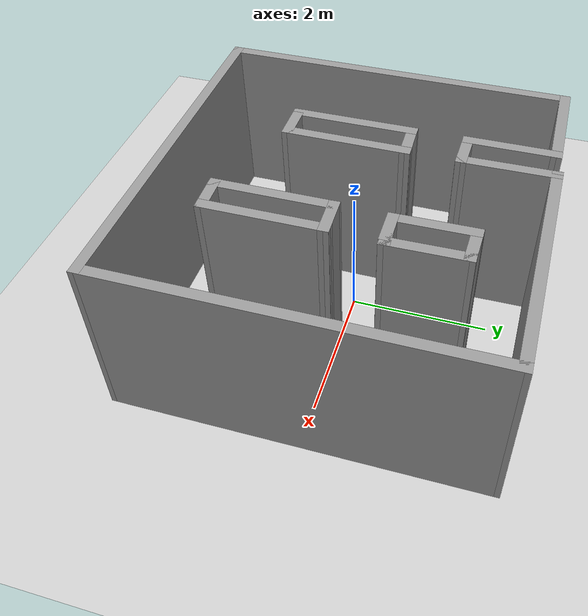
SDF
<?xml version="1.0" ?>

<sdf version="1.5">
  <world name="default">
    <!-- A global light source -->
    <include>
      <uri>model://sun</uri>
    </include>

    <!-- A ground plane -->
    <include>
      <uri>model://ground_plane</uri>
    </include>

    <!-- Our custom model -->
    <include>
      <uri>model://large_campus</uri>
    </include>
  </world>
</sdf>

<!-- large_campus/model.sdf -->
<sdf version='1.6'>
  <model name='large_campus'>
    <pose frame=''>0.029883 -0.035603 0 0 -0 0</pose>
    <link name='Wall_1'>
      <collision name='Wall_1_Collision'>
        <geometry>
          <box>
            <size>5.25 0.15 2.5</size>
          </box>
        </geometry>
        <pose frame=''>0 0 1.25 0 -0 0</pose>
      </collision>
      <visual name='Wall_1_Visual'>
        <pose frame=''>0 0 1.25 0 -0 0</pose>
        <geometry>
          <box>
            <size>5.25 0.15 2.5</size>
          </box>
        </geometry>
        <material>
          <script>
            <uri>file://media/materials/scripts/gazebo.material</uri>
            <name>Gazebo/Grey</name>
          </script>
          <ambient>1 1 1 1</ambient>
        </material>
        <meta>
          <layer>0</layer>
        </meta>
      </visual>
      <pose frame=''>-2.51675 -0.025857 0 0 -0 -1.5708</pose>
    </link>
    <link name='Wall_10'>
      <collision name='Wall_10_Collision'>
        <geometry>
          <box>
            <size>1.52617 0.15 2.5</size>
          </box>
        </geometry>
        <pose frame=''>0 0 1.25 0 -0 0</pose>
      </collision>
      <visual name='Wall_10_Visual'>
        <pose frame=''>0 0 1.25 0 -0 0</pose>
        <geometry>
          <box>
            <size>1.52617 0.15 2.5</size>
          </box>
        </geometry>
        <material>
          <script>
            <uri>file://media/materials/scripts/gazebo.material</uri>
            <name>Gazebo/Grey</name>
          </script>
          <ambient>1 1 1 1</ambient>
        </material>
        <meta>
          <layer>0</layer>
        </meta>
      </visual>
      <pose frame=''>-1.82867 2.52682 0 0 -0 -3.1377</pose>
    </link>
    <link name='Wall_12'>
      <collision name='Wall_12_Collision'>
        <geometry>
          <box>
            <size>1.806 0.15 2.5</size>
          </box>
        </geometry>
        <pose frame=''>0 0 1.25 0 -0 0</pose>
      </collision>
      <visual name='Wall_12_Visual'>
        <pose frame=''>0 0 1.25 0 -0 0</pose>
        <geometry>
          <box>
            <size>1.806 0.15 2.5</size>
          </box>
        </geometry>
        <material>
          <script>
            <uri>file://media/materials/scripts/gazebo.material</uri>
            <name>Gazebo/Grey</name>
          </script>
          <ambient>1 1 1 1</ambient>
        </material>
        <meta>
          <layer>0</layer>
        </meta>
      </visual>
      <pose frame=''>-1.14059 -0.276496 0 0 -0 -1.5708</pose>
    </link>
    <link name='Wall_13'>
      <collision name='Wall_13_Collision'>
        <geometry>
          <box>
            <size>0.5985 0.15 2.5</size>
          </box>
        </geometry>
        <pose frame=''>0 0 1.25 0 -0 0</pose>
      </collision>
      <visual name='Wall_13_Visual'>
        <pose frame=''>0 0 1.25 0 -0 0</pose>
        <geometry>
          <box>
            <size>0.5985 0.15 2.5</size>
          </box>
        </geometry>
        <material>
          <script>
            <uri>file://media/materials/scripts/gazebo.material</uri>
            <name>Gazebo/Grey</name>
          </script>
          <ambient>1 1 1 1</ambient>
        </material>
        <meta>
          <layer>0</layer>
        </meta>
      </visual>
      <pose frame=''>-0.91634 -1.1045 0 0 -0 0</pose>
    </link>
    <link name='Wall_14'>
      <collision name='Wall_14_Collision'>
        <geometry>
          <box>
            <size>1.81754 0.15 2.5</size>
          </box>
        </geometry>
        <pose frame=''>0 0 1.25 0 -0 0</pose>
      </collision>
      <visual name='Wall_14_Visual'>
        <pose frame=''>0 0 1.25 0 -0 0</pose>
        <geometry>
          <box>
            <size>1.81754 0.15 2.5</size>
          </box>
        </geometry>
        <material>
          <script>
            <uri>file://media/materials/scripts/gazebo.material</uri>
            <name>Gazebo/Grey</name>
          </script>
          <ambient>1 1 1 1</ambient>
        </material>
        <meta>
          <layer>0</layer>
        </meta>
      </visual>
      <pose frame=''>-0.68634 -0.270746 0 0 -0 1.5639</pose>
    </link>
    <link name='Wall_15'>
      <collision name='Wall_15_Collision'>
        <geometry>
          <box>
            <size>0.610144 0.15 2.5</size>
          </box>
        </geometry>
        <pose frame=''>0 0 1.25 0 -0 0</pose>
      </collision>
      <visual name='Wall_15_Visual'>
        <pose frame=''>0 0 1.25 0 -0 0</pose>
        <geometry>
          <box>
            <size>0.610144 0.15 2.5</size>
          </box>
        </geometry>
        <material>
          <script>
            <uri>file://media/materials/scripts/gazebo.material</uri>
            <name>Gazebo/Grey</name>
          </script>
          <ambient>1 1 1 1</ambient>
        </material>
        <meta>
          <layer>0</layer>
        </meta>
      </visual>
      <pose frame=''>-0.91059 0.557254 0 0 -0 -3.1166</pose>
    </link>
    <link name='Wall_17'>
      <collision name='Wall_17_Collision'>
        <geometry>
          <box>
            <size>1.75 0.15 2.5</size>
          </box>
        </geometry>
        <pose frame=''>0 0 1.25 0 -0 0</pose>
      </collision>
      <visual name='Wall_17_Visual'>
        <pose frame=''>0 0 1.25 0 -0 0</pose>
        <geometry>
          <box>
            <size>1.75 0.15 2.5</size>
          </box>
        </geometry>
        <material>
          <script>
            <uri>file://media/materials/scripts/gazebo.material</uri>
            <name>Gazebo/Grey</name>
          </script>
          <ambient>1 1 1 1</ambient>
        </material>
        <meta>
          <layer>0</layer>
        </meta>
      </visual>
      <pose frame=''>0.65341 -0.846496 0 0 -0 -1.5708</pose>
    </link>
    <link name='Wall_18'>
      <collision name='Wall_18_Collision'>
        <geometry>
          <box>
            <size>0.576205 0.15 2.5</size>
          </box>
        </geometry>
        <pose frame=''>0 0 1.25 0 -0 0</pose>
      </collision>
      <visual name='Wall_18_Visual'>
        <pose frame=''>0 0 1.25 0 -0 0</pose>
        <geometry>
          <box>
            <size>0.576205 0.15 2.5</size>
          </box>
        </geometry>
        <material>
          <script>
            <uri>file://media/materials/scripts/gazebo.material</uri>
            <name>Gazebo/Grey</name>
          </script>
          <ambient>1 1 1 1</ambient>
        </material>
        <meta>
          <layer>0</layer>
        </meta>
      </visual>
      <pose frame=''>0.86616 -1.64 0 0 -0 0.030543</pose>
    </link>
    <link name='Wall_19'>
      <collision name='Wall_19_Collision'>
        <geometry>
          <box>
            <size>1.75 0.15 2.5</size>
          </box>
        </geometry>
        <pose frame=''>0 0 1.25 0 -0 0</pose>
      </collision>
      <visual name='Wall_19_Visual'>
        <pose frame=''>0 0 1.25 0 -0 0</pose>
        <geometry>
          <box>
            <size>1.75 0.15 2.5</size>
          </box>
        </geometry>
        <material>
          <script>
            <uri>file://media/materials/scripts/gazebo.material</uri>
            <name>Gazebo/Grey</name>
          </script>
          <ambient>1 1 1 1</ambient>
        </material>
        <meta>
          <layer>0</layer>
        </meta>
      </visual>
      <pose frame=''>1.07891 -0.833496 0 0 -0 1.5708</pose>
    </link>
    <link name='Wall_20'>
      <collision name='Wall_20_Collision'>
        <geometry>
          <box>
            <size>0.575699 0.15 2.5</size>
          </box>
        </geometry>
        <pose frame=''>0 0 1.25 0 -0 0</pose>
      </collision>
      <visual name='Wall_20_Visual'>
        <pose frame=''>0 0 1.25 0 -0 0</pose>
        <geometry>
          <box>
            <size>0.575699 0.15 2.5</size>
          </box>
        </geometry>
        <material>
          <script>
            <uri>file://media/materials/scripts/gazebo.material</uri>
            <name>Gazebo/Grey</name>
          </script>
          <ambient>1 1 1 1</ambient>
        </material>
        <meta>
          <layer>0</layer>
        </meta>
      </visual>
      <pose frame=''>0.86616 -0.039996 0 0 -0 -3.11105</pose>
    </link>
    <link name='Wall_22'>
      <collision name='Wall_22_Collision'>
        <geometry>
          <box>
            <size>1.1965 0.15 2.5</size>
          </box>
        </geometry>
        <pose frame=''>0 0 1.25 0 -0 0</pose>
      </collision>
      <visual name='Wall_22_Visual'>
        <pose frame=''>0 0 1.25 0 -0 0</pose>
        <geometry>
          <box>
            <size>1.1965 0.15 2.5</size>
          </box>
        </geometry>
        <material>
          <script>
            <uri>file://media/materials/scripts/gazebo.material</uri>
            <name>Gazebo/Grey</name>
          </script>
          <ambient>1 1 1 1</ambient>
        </material>
        <meta>
          <layer>0</layer>
        </meta>
      </visual>
      <pose frame=''>0.67066 1.23575 0 0 -0 -1.55981</pose>
    </link>
    <link name='Wall_23'>
      <collision name='Wall_23_Collision'>
        <geometry>
          <box>
            <size>0.5 0.15 2.5</size>
          </box>
        </geometry>
        <pose frame=''>0 0 1.25 0 -0 0</pose>
      </collision>
      <visual name='Wall_23_Visual'>
        <pose frame=''>0 0 1.25 0 -0 0</pose>
        <geometry>
          <box>
            <size>0.5 0.15 2.5</size>
          </box>
        </geometry>
        <material>
          <script>
            <uri>file://media/materials/scripts/gazebo.material</uri>
            <name>Gazebo/Grey</name>
          </script>
          <ambient>1 1 1 1</ambient>
        </material>
        <meta>
          <layer>0</layer>
        </meta>
      </visual>
      <pose frame=''>0.85141 0.712504 0 0 -0 0</pose>
    </link>
    <link name='Wall_25'>
      <collision name='Wall_25_Collision'>
        <geometry>
          <box>
            <size>0.587151 0.15 2.5</size>
          </box>
        </geometry>
        <pose frame=''>0 0 1.25 0 -0 0</pose>
      </collision>
      <visual name='Wall_25_Visual'>
        <pose frame=''>0 0 1.25 0 -0 0</pose>
        <geometry>
          <box>
            <size>0.587151 0.15 2.5</size>
          </box>
        </geometry>
        <material>
          <script>
            <uri>file://media/materials/scripts/gazebo.material</uri>
            <name>Gazebo/Grey</name>
          </script>
          <ambient>1 1 1 1</ambient>
        </material>
        <meta>
          <layer>0</layer>
        </meta>
      </visual>
      <pose frame=''>0.89491 0.718254 0 0 -0 0.02631</pose>
    </link>
    <link name='Wall_26'>
      <collision name='Wall_26_Collision'>
        <geometry>
          <box>
            <size>1.1735 0.15 2.5</size>
          </box>
        </geometry>
        <pose frame=''>0 0 1.25 0 -0 0</pose>
      </collision>
      <visual name='Wall_26_Visual'>
        <pose frame=''>0 0 1.25 0 -0 0</pose>
        <geometry>
          <box>
            <size>1.1735 0.15 2.5</size>
          </box>
        </geometry>
        <material>
          <script>
            <uri>file://media/materials/scripts/gazebo.material</uri>
            <name>Gazebo/Grey</name>
          </script>
          <ambient>1 1 1 1</ambient>
        </material>
        <meta>
          <layer>0</layer>
        </meta>
      </visual>
      <pose frame=''>1.10766 1.23575 0 0 -0 1.58203</pose>
    </link>
    <link name='Wall_27'>
      <collision name='Wall_27_Collision'>
        <geometry>
          <box>
            <size>0.587151 0.15 2.5</size>
          </box>
        </geometry>
        <pose frame=''>0 0 1.25 0 -0 0</pose>
      </collision>
      <visual name='Wall_27_Visual'>
        <pose frame=''>0 0 1.25 0 -0 0</pose>
        <geometry>
          <box>
            <size>0.587151 0.15 2.5</size>
          </box>
        </geometry>
        <material>
          <script>
            <uri>file://media/materials/scripts/gazebo.material</uri>
            <name>Gazebo/Grey</name>
          </script>
          <ambient>1 1 1 1</ambient>
        </material>
        <meta>
          <layer>0</layer>
        </meta>
      </visual>
      <pose frame=''>0.88341 1.75325 0 0 -0 3.11528</pose>
    </link>
    <link name='Wall_4'>
      <collision name='Wall_4_Collision'>
        <geometry>
          <box>
            <size>5.18321 0.15 2.5</size>
          </box>
        </geometry>
        <pose frame=''>0 0 1.25 0 -0 0</pose>
      </collision>
      <visual name='Wall_4_Visual'>
        <pose frame=''>0 0 1.25 0 -0 0</pose>
        <geometry>
          <box>
            <size>5.18321 0.15 2.5</size>
          </box>
        </geometry>
        <material>
          <script>
            <uri>file://media/materials/scripts/gazebo.material</uri>
            <name>Gazebo/Grey</name>
          </script>
          <ambient>1 1 1 1</ambient>
        </material>
        <meta>
          <layer>0</layer>
        </meta>
      </visual>
      <pose frame=''>-0.00017 -2.56468 0 0 -0 0.004443</pose>
    </link>
    <link name='Wall_5'>
      <collision name='Wall_5_Collision'>
        <geometry>
          <box>
            <size>5.25 0.15 2.5</size>
          </box>
        </geometry>
        <pose frame=''>0 0 1.25 0 -0 0</pose>
      </collision>
      <visual name='Wall_5_Visual'>
        <pose frame=''>0 0 1.25 0 -0 0</pose>
        <geometry>
          <box>
            <size>5.25 0.15 2.5</size>
          </box>
        </geometry>
        <material>
          <script>
            <uri>file://media/materials/scripts/gazebo.material</uri>
            <name>Gazebo/Grey</name>
          </script>
          <ambient>1 1 1 1</ambient>
        </material>
        <meta>
          <layer>0</layer>
        </meta>
      </visual>
      <pose frame=''>2.51641 -0.003496 0 0 -0 1.5708</pose>
    </link>
    <link name='Wall_6'>
      <collision name='Wall_6_Collision'>
        <geometry>
          <box>
            <size>3.37013 0.15 2.5</size>
          </box>
        </geometry>
        <pose frame=''>0 0 1.25 0 -0 0</pose>
      </collision>
      <visual name='Wall_6_Visual'>
        <pose frame=''>0 0 1.25 0 -0 0</pose>
        <geometry>
          <box>
            <size>3.37013 0.15 2.5</size>
          </box>
        </geometry>
        <material>
          <script>
            <uri>file://media/materials/scripts/gazebo.material</uri>
            <name>Gazebo/Grey</name>
          </script>
          <ambient>1 1 1 1</ambient>
        </material>
        <meta>
          <layer>0</layer>
        </meta>
      </visual>
      <pose frame=''>0.90641 2.561 0 0 -0 3.13259</pose>
    </link>
    <link name='Wall_7'>
      <collision name='Wall_7_Collision'>
        <geometry>
          <box>
            <size>1.40355 0.15 2.5</size>
          </box>
        </geometry>
        <pose frame=''>0 0 1.25 0 -0 0</pose>
      </collision>
      <visual name='Wall_7_Visual'>
        <pose frame=''>0 0 1.25 0 -0 0</pose>
        <geometry>
          <box>
            <size>1.40355 0.15 2.5</size>
          </box>
        </geometry>
        <material>
          <script>
            <uri>file://media/materials/scripts/gazebo.material</uri>
            <name>Gazebo/Grey</name>
          </script>
          <ambient>1 1 1 1</ambient>
        </material>
        <meta>
          <layer>0</layer>
        </meta>
      </visual>
      <pose frame=''>-0.69784 1.94875 0 0 -0 -1.56162</pose>
    </link>
    <link name='Wall_8'>
      <collision name='Wall_8_Collision'>
        <geometry>
          <box>
            <size>0.598647 0.15 2.5</size>
          </box>
        </geometry>
        <pose frame=''>0 0 1.25 0 -0 0</pose>
      </collision>
      <visual name='Wall_8_Visual'>
        <pose frame=''>0 0 1.25 0 -0 0</pose>
        <geometry>
          <box>
            <size>0.598647 0.15 2.5</size>
          </box>
        </geometry>
        <material>
          <script>
            <uri>file://media/materials/scripts/gazebo.material</uri>
            <name>Gazebo/Grey</name>
          </script>
          <ambient>1 1 1 1</ambient>
        </material>
        <meta>
          <layer>0</layer>
        </meta>
      </visual>
      <pose frame=''>-0.91634 1.32775 0 0 -0 3.11596</pose>
    </link>
    <link name='Wall_9'>
      <collision name='Wall_9_Collision'>
        <geometry>
          <box>
            <size>1.34688 0.15 2.5</size>
          </box>
        </geometry>
        <pose frame=''>0 0 1.25 0 -0 0</pose>
      </collision>
      <visual name='Wall_9_Visual'>
        <pose frame=''>0 0 1.25 0 -0 0</pose>
        <geometry>
          <box>
            <size>1.34688 0.15 2.5</size>
          </box>
        </geometry>
        <material>
          <script>
            <uri>file://media/materials/scripts/gazebo.material</uri>
            <name>Gazebo/Grey</name>
          </script>
          <ambient>1 1 1 1</ambient>
        </material>
        <meta>
          <layer>0</layer>
        </meta>
      </visual>
      <pose frame=''>-1.14059 1.9315 0 0 -0 1.5708</pose>
    </link>
    <static>1</static>
  </model>
</sdf>
